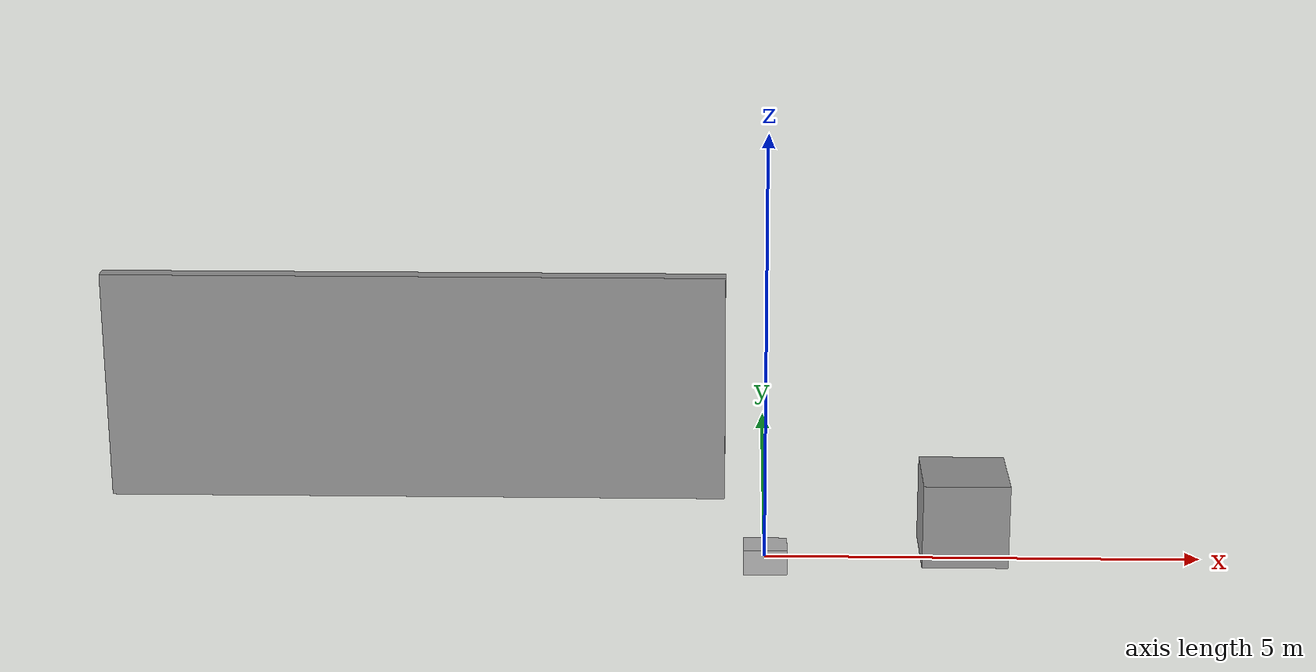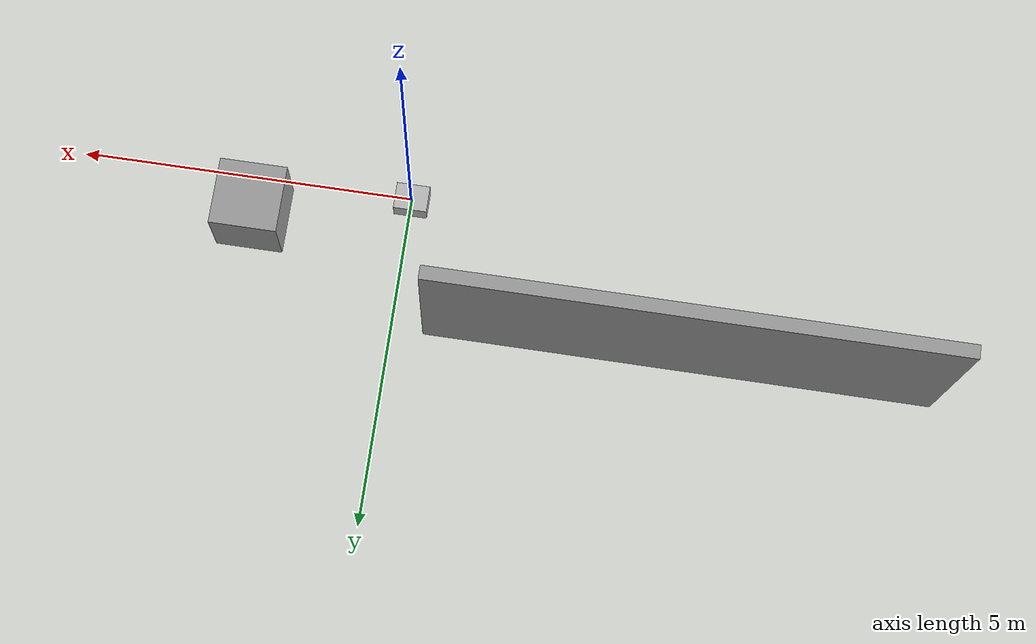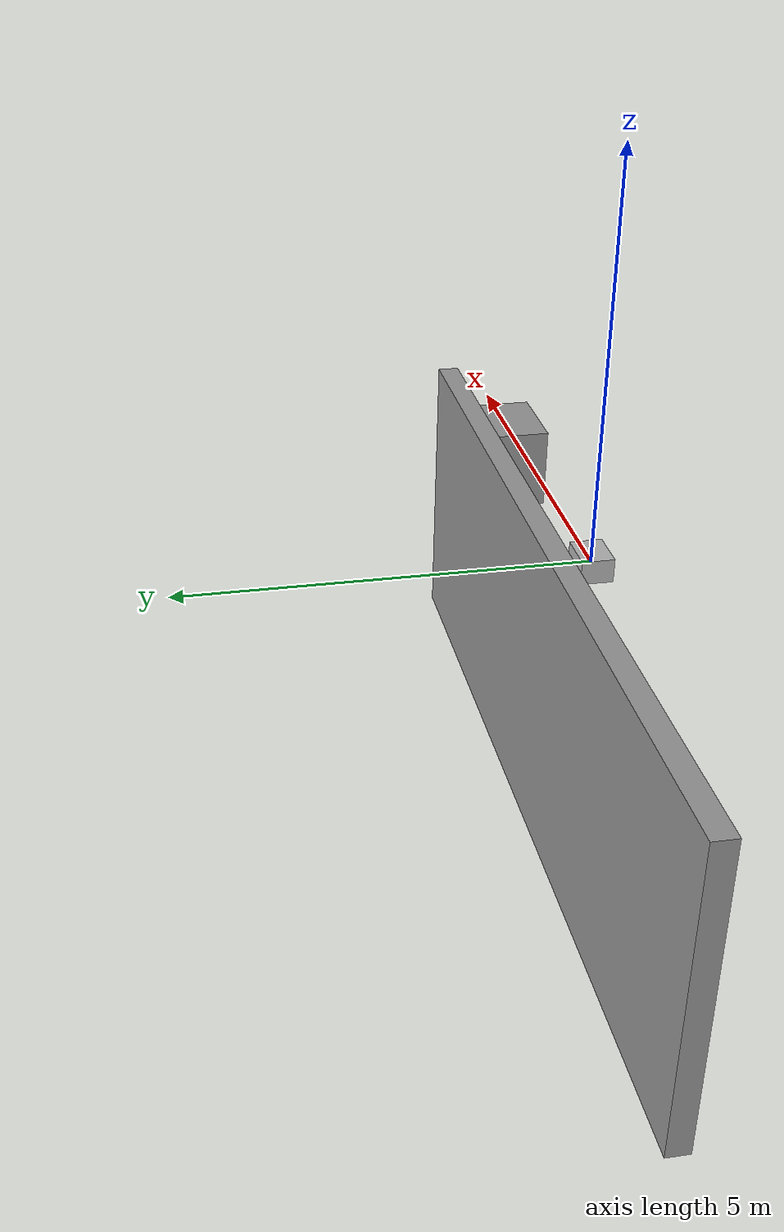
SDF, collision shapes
<?xml version='1.0'?>
<sdf version='1.7'>
  <model name='test.world'>
    <link name='link'>
      <inertial>
        <mass>2</mass>
        <inertia>
          <ixx>0.0416667</ixx>
          <ixy>0</ixy>
          <ixz>0</ixz>
          <iyy>0.0566667</iyy>
          <iyz>0</iyz>
          <izz>0.0683333</izz>
        </inertia>
        <pose>0 0 0 0 -0 0</pose>
      </inertial>
      <self_collide>0</self_collide>
      <enable_wind>0</enable_wind>
      <kinematic>0</kinematic>
      <pose>0 0 0 0 -0 0</pose>
      <visual name='visual'>
        <pose>0 0 -0.15 0 -0 0</pose>
        <geometry>
          <mesh>
            <uri>model://cardboard_box/meshes/cardboard_box.dae</uri>
            <scale>1.25932 1.00745 0.755591</scale>
          </mesh>
        </geometry>
        <material>
          <shader type='pixel'/>
        </material>
        <transparency>0</transparency>
        <cast_shadows>1</cast_shadows>
      </visual>
      <collision name='collision'>
        <laser_retro>0</laser_retro>
        <max_contacts>10</max_contacts>
        <pose>0 0 0 0 -0 0</pose>
        <geometry>
          <box>
            <size>0.5 0.4 0.3</size>
          </box>
        </geometry>
        <surface>
          <friction>
            <ode>
              <mu>1</mu>
              <mu2>1</mu2>
              <fdir1>0 0 0</fdir1>
              <slip1>0</slip1>
              <slip2>0</slip2>
            </ode>
            <torsional>
              <coefficient>1</coefficient>
              <patch_radius>0</patch_radius>
              <surface_radius>0</surface_radius>
              <use_patch_radius>1</use_patch_radius>
              <ode>
                <slip>0</slip>
              </ode>
            </torsional>
          </friction>
          <bounce>
            <restitution_coefficient>0</restitution_coefficient>
            <threshold>1e+06</threshold>
          </bounce>
          <contact>
            <collide_without_contact>0</collide_without_contact>
            <collide_without_contact_bitmask>1</collide_without_contact_bitmask>
            <collide_bitmask>1</collide_bitmask>
            <ode>
              <soft_cfm>0</soft_cfm>
              <soft_erp>0.2</soft_erp>
              <kp>1e+07</kp>
              <kd>1</kd>
              <max_vel>0.1</max_vel>
              <min_depth>0.001</min_depth>
            </ode>
            <bullet>
              <split_impulse>1</split_impulse>
              <split_impulse_penetration_threshold>-0.01</split_impulse_penetration_threshold>
              <soft_cfm>0</soft_cfm>
              <soft_erp>0.2</soft_erp>
              <kp>1e+07</kp>
              <kd>1</kd>
            </bullet>
          </contact>
        </surface>
      </collision>
    </link>
    <link name='link_0'>
      <inertial>
        <mass>1</mass>
        <inertia>
          <ixx>0.166667</ixx>
          <ixy>0</ixy>
          <ixz>0</ixz>
          <iyy>0.166667</iyy>
          <iyz>0</iyz>
          <izz>0.166667</izz>
        </inertia>
      </inertial>
      <pose>2.31467 0.554465 0.351 0 -0 0</pose>
      <visual name='visual'>
        <pose>0 0 0 0 -0 0</pose>
        <geometry>
          <box>
            <size>1 1 1</size>
          </box>
        </geometry>
        <material>
          <lighting>1</lighting>
          <script>
            <uri>file://media/materials/scripts/gazebo.material</uri>
            <name>Gazebo/Grey</name>
          </script>
          <shader type='pixel'/>
        </material>
        <transparency>0</transparency>
        <cast_shadows>1</cast_shadows>
      </visual>
      <collision name='collision'>
        <laser_retro>0</laser_retro>
        <max_contacts>10</max_contacts>
        <pose>0 0 0 0 -0 0</pose>
        <geometry>
          <box>
            <size>1 1 1</size>
          </box>
        </geometry>
        <surface>
          <friction>
            <ode>
              <mu>1</mu>
              <mu2>1</mu2>
              <fdir1>0 0 0</fdir1>
              <slip1>0</slip1>
              <slip2>0</slip2>
            </ode>
            <torsional>
              <coefficient>1</coefficient>
              <patch_radius>0</patch_radius>
              <surface_radius>0</surface_radius>
              <use_patch_radius>1</use_patch_radius>
              <ode>
                <slip>0</slip>
              </ode>
            </torsional>
          </friction>
          <bounce>
            <restitution_coefficient>0</restitution_coefficient>
            <threshold>1e+06</threshold>
          </bounce>
          <contact>
            <collide_without_contact>0</collide_without_contact>
            <collide_without_contact_bitmask>1</collide_without_contact_bitmask>
            <collide_bitmask>1</collide_bitmask>
            <ode>
              <soft_cfm>0</soft_cfm>
              <soft_erp>0.2</soft_erp>
              <kp>1e+13</kp>
              <kd>1</kd>
              <max_vel>0.01</max_vel>
              <min_depth>0</min_depth>
            </ode>
            <bullet>
              <split_impulse>1</split_impulse>
              <split_impulse_penetration_threshold>-0.01</split_impulse_penetration_threshold>
              <soft_cfm>0</soft_cfm>
              <soft_erp>0.2</soft_erp>
              <kp>1e+13</kp>
              <kd>1</kd>
            </bullet>
          </contact>
        </surface>
      </collision>
    </link>
    <model name='grey_wall'>
      <static>1</static>
      <link name='link'>
        <pose>0 0 1.4 0 -0 0</pose>
        <collision name='collision'>
          <geometry>
            <box>
              <size>7.5 0.2 2.8</size>
            </box>
          </geometry>
        </collision>
        <visual name='visual'>
          <cast_shadows>0</cast_shadows>
          <geometry>
            <box>
              <size>7.5 0.2 2.8</size>
            </box>
          </geometry>
          <material>
            <script>
              <uri>model://grey_wall/materials/scripts</uri>
              <uri>model://grey_wall/materials/textures</uri>
              <name>vrc/grey_wall</name>
            </script>
          </material>
        </visual>
      </link>
      <pose>-4.23165 1.93565 0 0 -0 0</pose>
    </model>
    <static>0</static>
    <allow_auto_disable>1</allow_auto_disable>
  </model>
</sdf>
